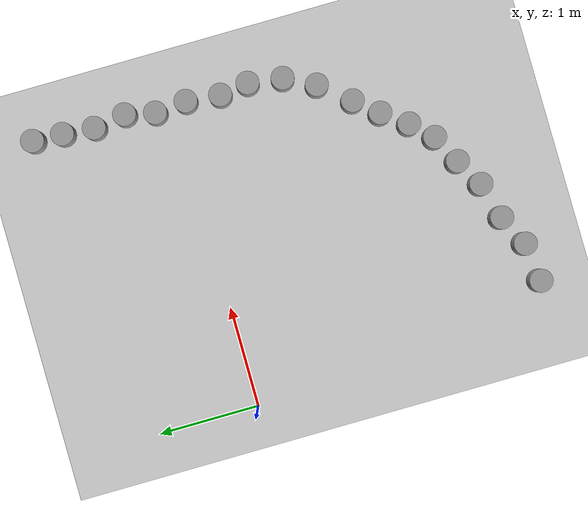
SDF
<sdf version="1.6">
 <world name="default">
  <model name="ground_plane">
   <static>1</static>
   <link name="link">
    <collision name="collision">
     <geometry><plane><normal>0 0 1</normal><size>100 100</size></plane></geometry>
     <surface>
      <contact><collide_bitmask>65535</collide_bitmask></contact>
      <friction><ode><mu>100</mu><mu2>50</mu2></ode></friction>
     </surface>
    </collision>
    <visual name="visual">
     <cast_shadows>0</cast_shadows>
     <geometry><plane><normal>0 0 1</normal><size>100 100</size></plane></geometry>
     <material>
      <script><uri>file://media/materials/scripts/gazebo.material</uri><name>Gazebo/Grey</name></script>
     </material>
    </visual>
   </link>
  </model>
  <model name="pillar_clone_25">
   <link name="link_0">
    <inertial>
     <mass>0.0172437</mass>
     <inertia>
      <ixx>0.000207925</ixx>
      <ixy>0</ixy>
      <ixz>0</ixz>
      <iyy>0.000207925</iyy>
      <iyz>0</iyz>
      <izz>0.000114861</izz>
     </inertia>
    </inertial>
    <pose>2e-06 -0 0 0 -0 0</pose>
    <visual name="visual">
     <geometry><cylinder><radius>0.115422</radius><length>0.32362</length></cylinder></geometry>
     <material>
      <lighting>1</lighting>
      <script><uri>file://media/materials/scripts/gazebo.material</uri><name>Gazebo/Grey</name></script>
      <shader type="vertex"><normal_map>__default__</normal_map></shader>
     </material>
    </visual>
    <collision name="collision">
     <geometry><cylinder><radius>0.115422</radius><length>0.32362</length></cylinder></geometry>
     <surface>
      <friction>
       <ode><mu>1</mu><mu2>1</mu2><fdir1>0 0 0</fdir1><slip1>0</slip1><slip2>0</slip2></ode>
       <torsional>
        <coefficient>1</coefficient>
        <patch_radius>0</patch_radius>
        <surface_radius>0</surface_radius>
        <use_patch_radius>1</use_patch_radius>
        <ode><slip>0</slip></ode>
       </torsional>
      </friction>
      <bounce><restitution_coefficient>0</restitution_coefficient><threshold>1e+06</threshold></bounce>
      <contact>
       <collide_without_contact>0</collide_without_contact>
       <collide_without_contact_bitmask>1</collide_without_contact_bitmask>
       <collide_bitmask>1</collide_bitmask>
       <ode>
        <soft_cfm>0</soft_cfm>
        <soft_erp>0.2</soft_erp>
        <kp>1e+13</kp>
        <kd>1</kd>
        <max_vel>0.01</max_vel>
        <min_depth>0</min_depth>
       </ode>
       <bullet>
        <split_impulse>1</split_impulse>
        <split_impulse_penetration_threshold>-0.01</split_impulse_penetration_threshold>
        <soft_cfm>0</soft_cfm>
        <soft_erp>0.2</soft_erp>
        <kp>1e+13</kp>
        <kd>1</kd>
       </bullet>
      </contact>
     </surface>
    </collision>
   </link>
   <static>1</static>
   <pose>3.08087 1.39534 0 0 -0 0</pose>
  </model>
  <model name="pillar_clone_26">
   <link name="link_0">
    <inertial>
     <mass>0.0172437</mass>
     <inertia>
      <ixx>0.000207925</ixx>
      <ixy>0</ixy>
      <ixz>0</ixz>
      <iyy>0.000207925</iyy>
      <iyz>0</iyz>
      <izz>0.000114861</izz>
     </inertia>
    </inertial>
    <pose>2e-06 -0 0 0 -0 0</pose>
    <visual name="visual">
     <geometry><cylinder><radius>0.115422</radius><length>0.32362</length></cylinder></geometry>
     <material>
      <lighting>1</lighting>
      <script><uri>file://media/materials/scripts/gazebo.material</uri><name>Gazebo/Grey</name></script>
      <shader type="vertex"><normal_map>__default__</normal_map></shader>
     </material>
    </visual>
    <collision name="collision">
     <geometry><cylinder><radius>0.115422</radius><length>0.32362</length></cylinder></geometry>
     <surface>
      <friction>
       <ode><mu>1</mu><mu2>1</mu2><fdir1>0 0 0</fdir1><slip1>0</slip1><slip2>0</slip2></ode>
       <torsional>
        <coefficient>1</coefficient>
        <patch_radius>0</patch_radius>
        <surface_radius>0</surface_radius>
        <use_patch_radius>1</use_patch_radius>
        <ode><slip>0</slip></ode>
       </torsional>
      </friction>
      <bounce><restitution_coefficient>0</restitution_coefficient><threshold>1e+06</threshold></bounce>
      <contact>
       <collide_without_contact>0</collide_without_contact>
       <collide_without_contact_bitmask>1</collide_without_contact_bitmask>
       <collide_bitmask>1</collide_bitmask>
       <ode>
        <soft_cfm>0</soft_cfm>
        <soft_erp>0.2</soft_erp>
        <kp>1e+13</kp>
        <kd>1</kd>
        <max_vel>0.01</max_vel>
        <min_depth>0</min_depth>
       </ode>
       <bullet>
        <split_impulse>1</split_impulse>
        <split_impulse_penetration_threshold>-0.01</split_impulse_penetration_threshold>
        <soft_cfm>0</soft_cfm>
        <soft_erp>0.2</soft_erp>
        <kp>1e+13</kp>
        <kd>1</kd>
       </bullet>
      </contact>
     </surface>
    </collision>
   </link>
   <static>1</static>
   <pose>3.0662 1.09873 0 0 -0 0</pose>
  </model>
  <model name="pillar_clone_27">
   <link name="link_0">
    <inertial>
     <mass>0.0172437</mass>
     <inertia>
      <ixx>0.000207925</ixx>
      <ixy>0</ixy>
      <ixz>0</ixz>
      <iyy>0.000207925</iyy>
      <iyz>0</iyz>
      <izz>0.000114861</izz>
     </inertia>
    </inertial>
    <pose>2e-06 -0 0 0 -0 0</pose>
    <visual name="visual">
     <geometry><cylinder><radius>0.115422</radius><length>0.32362</length></cylinder></geometry>
     <material>
      <lighting>1</lighting>
      <script><uri>file://media/materials/scripts/gazebo.material</uri><name>Gazebo/Grey</name></script>
      <shader type="vertex"><normal_map>__default__</normal_map></shader>
     </material>
    </visual>
    <collision name="collision">
     <geometry><cylinder><radius>0.115422</radius><length>0.32362</length></cylinder></geometry>
     <surface>
      <friction>
       <ode><mu>1</mu><mu2>1</mu2><fdir1>0 0 0</fdir1><slip1>0</slip1><slip2>0</slip2></ode>
       <torsional>
        <coefficient>1</coefficient>
        <patch_radius>0</patch_radius>
        <surface_radius>0</surface_radius>
        <use_patch_radius>1</use_patch_radius>
        <ode><slip>0</slip></ode>
       </torsional>
      </friction>
      <bounce><restitution_coefficient>0</restitution_coefficient><threshold>1e+06</threshold></bounce>
      <contact>
       <collide_without_contact>0</collide_without_contact>
       <collide_without_contact_bitmask>1</collide_without_contact_bitmask>
       <collide_bitmask>1</collide_bitmask>
       <ode>
        <soft_cfm>0</soft_cfm>
        <soft_erp>0.2</soft_erp>
        <kp>1e+13</kp>
        <kd>1</kd>
        <max_vel>0.01</max_vel>
        <min_depth>0</min_depth>
       </ode>
       <bullet>
        <split_impulse>1</split_impulse>
        <split_impulse_penetration_threshold>-0.01</split_impulse_penetration_threshold>
        <soft_cfm>0</soft_cfm>
        <soft_erp>0.2</soft_erp>
        <kp>1e+13</kp>
        <kd>1</kd>
       </bullet>
      </contact>
     </surface>
    </collision>
   </link>
   <static>1</static>
   <pose>3.03882 0.786964 0 0 -0 0</pose>
  </model>
  <model name="pillar_clone_28">
   <link name="link_0">
    <inertial>
     <mass>0.0172437</mass>
     <inertia>
      <ixx>0.000207925</ixx>
      <ixy>0</ixy>
      <ixz>0</ixz>
      <iyy>0.000207925</iyy>
      <iyz>0</iyz>
      <izz>0.000114861</izz>
     </inertia>
    </inertial>
    <pose>2e-06 -0 0 0 -0 0</pose>
    <visual name="visual">
     <geometry><cylinder><radius>0.115422</radius><length>0.32362</length></cylinder></geometry>
     <material>
      <lighting>1</lighting>
      <script><uri>file://media/materials/scripts/gazebo.material</uri><name>Gazebo/Grey</name></script>
      <shader type="vertex"><normal_map>__default__</normal_map></shader>
     </material>
    </visual>
    <collision name="collision">
     <geometry><cylinder><radius>0.115422</radius><length>0.32362</length></cylinder></geometry>
     <surface>
      <friction>
       <ode><mu>1</mu><mu2>1</mu2><fdir1>0 0 0</fdir1><slip1>0</slip1><slip2>0</slip2></ode>
       <torsional>
        <coefficient>1</coefficient>
        <patch_radius>0</patch_radius>
        <surface_radius>0</surface_radius>
        <use_patch_radius>1</use_patch_radius>
        <ode><slip>0</slip></ode>
       </torsional>
      </friction>
      <bounce><restitution_coefficient>0</restitution_coefficient><threshold>1e+06</threshold></bounce>
      <contact>
       <collide_without_contact>0</collide_without_contact>
       <collide_without_contact_bitmask>1</collide_without_contact_bitmask>
       <collide_bitmask>1</collide_bitmask>
       <ode>
        <soft_cfm>0</soft_cfm>
        <soft_erp>0.2</soft_erp>
        <kp>1e+13</kp>
        <kd>1</kd>
        <max_vel>0.01</max_vel>
        <min_depth>0</min_depth>
       </ode>
       <bullet>
        <split_impulse>1</split_impulse>
        <split_impulse_penetration_threshold>-0.01</split_impulse_penetration_threshold>
        <soft_cfm>0</soft_cfm>
        <soft_erp>0.2</soft_erp>
        <kp>1e+13</kp>
        <kd>1</kd>
       </bullet>
      </contact>
     </surface>
    </collision>
   </link>
   <static>1</static>
   <pose>3.08397 0.469575 0 0 -0 0</pose>
  </model>
  <model name="pillar_clone_29">
   <link name="link_0">
    <inertial>
     <mass>0.0172437</mass>
     <inertia>
      <ixx>0.000207925</ixx>
      <ixy>0</ixy>
      <ixz>0</ixz>
      <iyy>0.000207925</iyy>
      <iyz>0</iyz>
      <izz>0.000114861</izz>
     </inertia>
    </inertial>
    <pose>2e-06 -0 0 0 -0 0</pose>
    <visual name="visual">
     <geometry><cylinder><radius>0.115422</radius><length>0.32362</length></cylinder></geometry>
     <material>
      <lighting>1</lighting>
      <script><uri>file://media/materials/scripts/gazebo.material</uri><name>Gazebo/Grey</name></script>
      <shader type="vertex"><normal_map>__default__</normal_map></shader>
     </material>
    </visual>
    <collision name="collision">
     <geometry><cylinder><radius>0.115422</radius><length>0.32362</length></cylinder></geometry>
     <surface>
      <friction>
       <ode><mu>1</mu><mu2>1</mu2><fdir1>0 0 0</fdir1><slip1>0</slip1><slip2>0</slip2></ode>
       <torsional>
        <coefficient>1</coefficient>
        <patch_radius>0</patch_radius>
        <surface_radius>0</surface_radius>
        <use_patch_radius>1</use_patch_radius>
        <ode><slip>0</slip></ode>
       </torsional>
      </friction>
      <bounce><restitution_coefficient>0</restitution_coefficient><threshold>1e+06</threshold></bounce>
      <contact>
       <collide_without_contact>0</collide_without_contact>
       <collide_without_contact_bitmask>1</collide_without_contact_bitmask>
       <collide_bitmask>1</collide_bitmask>
       <ode>
        <soft_cfm>0</soft_cfm>
        <soft_erp>0.2</soft_erp>
        <kp>1e+13</kp>
        <kd>1</kd>
        <max_vel>0.01</max_vel>
        <min_depth>0</min_depth>
       </ode>
       <bullet>
        <split_impulse>1</split_impulse>
        <split_impulse_penetration_threshold>-0.01</split_impulse_penetration_threshold>
        <soft_cfm>0</soft_cfm>
        <soft_erp>0.2</soft_erp>
        <kp>1e+13</kp>
        <kd>1</kd>
       </bullet>
      </contact>
     </surface>
    </collision>
   </link>
   <static>1</static>
   <pose>3.0183 0.177162 0 0 -0 0</pose>
  </model>
  <model name="pillar_clone_30">
   <link name="link_0">
    <inertial>
     <mass>0.0172437</mass>
     <inertia>
      <ixx>0.000207925</ixx>
      <ixy>0</ixy>
      <ixz>0</ixz>
      <iyy>0.000207925</iyy>
      <iyz>0</iyz>
      <izz>0.000114861</izz>
     </inertia>
    </inertial>
    <pose>2e-06 -0 0 0 -0 0</pose>
    <visual name="visual">
     <geometry><cylinder><radius>0.115422</radius><length>0.32362</length></cylinder></geometry>
     <material>
      <lighting>1</lighting>
      <script><uri>file://media/materials/scripts/gazebo.material</uri><name>Gazebo/Grey</name></script>
      <shader type="vertex"><normal_map>__default__</normal_map></shader>
     </material>
    </visual>
    <collision name="collision">
     <geometry><cylinder><radius>0.115422</radius><length>0.32362</length></cylinder></geometry>
     <surface>
      <friction>
       <ode><mu>1</mu><mu2>1</mu2><fdir1>0 0 0</fdir1><slip1>0</slip1><slip2>0</slip2></ode>
       <torsional>
        <coefficient>1</coefficient>
        <patch_radius>0</patch_radius>
        <surface_radius>0</surface_radius>
        <use_patch_radius>1</use_patch_radius>
        <ode><slip>0</slip></ode>
       </torsional>
      </friction>
      <bounce><restitution_coefficient>0</restitution_coefficient><threshold>1e+06</threshold></bounce>
      <contact>
       <collide_without_contact>0</collide_without_contact>
       <collide_without_contact_bitmask>1</collide_without_contact_bitmask>
       <collide_bitmask>1</collide_bitmask>
       <ode>
        <soft_cfm>0</soft_cfm>
        <soft_erp>0.2</soft_erp>
        <kp>1e+13</kp>
        <kd>1</kd>
        <max_vel>0.01</max_vel>
        <min_depth>0</min_depth>
       </ode>
       <bullet>
        <split_impulse>1</split_impulse>
        <split_impulse_penetration_threshold>-0.01</split_impulse_penetration_threshold>
        <soft_cfm>0</soft_cfm>
        <soft_erp>0.2</soft_erp>
        <kp>1e+13</kp>
        <kd>1</kd>
       </bullet>
      </contact>
     </surface>
    </collision>
   </link>
   <static>1</static>
   <pose>3.04633 -0.136981 0 0 -0 0</pose>
  </model>
  <model name="pillar_clone_31">
   <link name="link_0">
    <inertial>
     <mass>0.0172437</mass>
     <inertia>
      <ixx>0.000207925</ixx>
      <ixy>0</ixy>
      <ixz>0</ixz>
      <iyy>0.000207925</iyy>
      <iyz>0</iyz>
      <izz>0.000114861</izz>
     </inertia>
    </inertial>
    <pose>2e-06 -0 0 0 -0 0</pose>
    <visual name="visual">
     <geometry><cylinder><radius>0.115422</radius><length>0.32362</length></cylinder></geometry>
     <material>
      <lighting>1</lighting>
      <script><uri>file://media/materials/scripts/gazebo.material</uri><name>Gazebo/Grey</name></script>
      <shader type="vertex"><normal_map>__default__</normal_map></shader>
     </material>
    </visual>
    <collision name="collision">
     <geometry><cylinder><radius>0.115422</radius><length>0.32362</length></cylinder></geometry>
     <surface>
      <friction>
       <ode><mu>1</mu><mu2>1</mu2><fdir1>0 0 0</fdir1><slip1>0</slip1><slip2>0</slip2></ode>
       <torsional>
        <coefficient>1</coefficient>
        <patch_radius>0</patch_radius>
        <surface_radius>0</surface_radius>
        <use_patch_radius>1</use_patch_radius>
        <ode><slip>0</slip></ode>
       </torsional>
      </friction>
      <bounce><restitution_coefficient>0</restitution_coefficient><threshold>1e+06</threshold></bounce>
      <contact>
       <collide_without_contact>0</collide_without_contact>
       <collide_without_contact_bitmask>1</collide_without_contact_bitmask>
       <collide_bitmask>1</collide_bitmask>
       <ode>
        <soft_cfm>0</soft_cfm>
        <soft_erp>0.2</soft_erp>
        <kp>1e+13</kp>
        <kd>1</kd>
        <max_vel>0.01</max_vel>
        <min_depth>0</min_depth>
       </ode>
       <bullet>
        <split_impulse>1</split_impulse>
        <split_impulse_penetration_threshold>-0.01</split_impulse_penetration_threshold>
        <soft_cfm>0</soft_cfm>
        <soft_erp>0.2</soft_erp>
        <kp>1e+13</kp>
        <kd>1</kd>
       </bullet>
      </contact>
     </surface>
    </collision>
   </link>
   <static>1</static>
   <pose>3.01254 -0.476016 0 0 -0 0</pose>
  </model>
  <model name="pillar_clone_32">
   <link name="link_0">
    <inertial>
     <mass>0.0172437</mass>
     <inertia>
      <ixx>0.000207925</ixx>
      <ixy>0</ixy>
      <ixz>0</ixz>
      <iyy>0.000207925</iyy>
      <iyz>0</iyz>
      <izz>0.000114861</izz>
     </inertia>
    </inertial>
    <pose>2e-06 -0 0 0 -0 0</pose>
    <visual name="visual">
     <geometry><cylinder><radius>0.115422</radius><length>0.32362</length></cylinder></geometry>
     <material>
      <lighting>1</lighting>
      <script><uri>file://media/materials/scripts/gazebo.material</uri><name>Gazebo/Grey</name></script>
      <shader type="vertex"><normal_map>__default__</normal_map></shader>
     </material>
    </visual>
    <collision name="collision">
     <geometry><cylinder><radius>0.115422</radius><length>0.32362</length></cylinder></geometry>
     <surface>
      <friction>
       <ode><mu>1</mu><mu2>1</mu2><fdir1>0 0 0</fdir1><slip1>0</slip1><slip2>0</slip2></ode>
       <torsional>
        <coefficient>1</coefficient>
        <patch_radius>0</patch_radius>
        <surface_radius>0</surface_radius>
        <use_patch_radius>1</use_patch_radius>
        <ode><slip>0</slip></ode>
       </torsional>
      </friction>
      <bounce><restitution_coefficient>0</restitution_coefficient><threshold>1e+06</threshold></bounce>
      <contact>
       <collide_without_contact>0</collide_without_contact>
       <collide_without_contact_bitmask>1</collide_without_contact_bitmask>
       <collide_bitmask>1</collide_bitmask>
       <ode>
        <soft_cfm>0</soft_cfm>
        <soft_erp>0.2</soft_erp>
        <kp>1e+13</kp>
        <kd>1</kd>
        <max_vel>0.01</max_vel>
        <min_depth>0</min_depth>
       </ode>
       <bullet>
        <split_impulse>1</split_impulse>
        <split_impulse_penetration_threshold>-0.01</split_impulse_penetration_threshold>
        <soft_cfm>0</soft_cfm>
        <soft_erp>0.2</soft_erp>
        <kp>1e+13</kp>
        <kd>1</kd>
       </bullet>
      </contact>
     </surface>
    </collision>
   </link>
   <static>1</static>
   <pose>3.05111 -0.761142 0 0 -0 0</pose>
  </model>
  <model name="pillar_clone_33">
   <link name="link_0">
    <inertial>
     <mass>0.0172437</mass>
     <inertia>
      <ixx>0.000207925</ixx>
      <ixy>0</ixy>
      <ixz>0</ixz>
      <iyy>0.000207925</iyy>
      <iyz>0</iyz>
      <izz>0.000114861</izz>
     </inertia>
    </inertial>
    <pose>2e-06 -0 0 0 -0 0</pose>
    <visual name="visual">
     <geometry><cylinder><radius>0.115422</radius><length>0.32362</length></cylinder></geometry>
     <material>
      <lighting>1</lighting>
      <script><uri>file://media/materials/scripts/gazebo.material</uri><name>Gazebo/Grey</name></script>
      <shader type="vertex"><normal_map>__default__</normal_map></shader>
     </material>
    </visual>
    <collision name="collision">
     <geometry><cylinder><radius>0.115422</radius><length>0.32362</length></cylinder></geometry>
     <surface>
      <friction>
       <ode><mu>1</mu><mu2>1</mu2><fdir1>0 0 0</fdir1><slip1>0</slip1><slip2>0</slip2></ode>
       <torsional>
        <coefficient>1</coefficient>
        <patch_radius>0</patch_radius>
        <surface_radius>0</surface_radius>
        <use_patch_radius>1</use_patch_radius>
        <ode><slip>0</slip></ode>
       </torsional>
      </friction>
      <bounce><restitution_coefficient>0</restitution_coefficient><threshold>1e+06</threshold></bounce>
      <contact>
       <collide_without_contact>0</collide_without_contact>
       <collide_without_contact_bitmask>1</collide_without_contact_bitmask>
       <collide_bitmask>1</collide_bitmask>
       <ode>
        <soft_cfm>0</soft_cfm>
        <soft_erp>0.2</soft_erp>
        <kp>1e+13</kp>
        <kd>1</kd>
        <max_vel>0.01</max_vel>
        <min_depth>0</min_depth>
       </ode>
       <bullet>
        <split_impulse>1</split_impulse>
        <split_impulse_penetration_threshold>-0.01</split_impulse_penetration_threshold>
        <soft_cfm>0</soft_cfm>
        <soft_erp>0.2</soft_erp>
        <kp>1e+13</kp>
        <kd>1</kd>
       </bullet>
      </contact>
     </surface>
    </collision>
   </link>
   <static>1</static>
   <pose>3.0028 -1.10097 0 0 -0 0</pose>
  </model>
  <model name="pillar_clone_34">
   <link name="link_0">
    <inertial>
     <mass>0.0172437</mass>
     <inertia>
      <ixx>0.000207925</ixx>
      <ixy>0</ixy>
      <ixz>0</ixz>
      <iyy>0.000207925</iyy>
      <iyz>0</iyz>
      <izz>0.000114861</izz>
     </inertia>
    </inertial>
    <pose>2e-06 -0 0 0 -0 0</pose>
    <visual name="visual">
     <geometry><cylinder><radius>0.115422</radius><length>0.32362</length></cylinder></geometry>
     <material>
      <lighting>1</lighting>
      <script><uri>file://media/materials/scripts/gazebo.material</uri><name>Gazebo/Grey</name></script>
      <shader type="vertex"><normal_map>__default__</normal_map></shader>
     </material>
    </visual>
    <collision name="collision">
     <geometry><cylinder><radius>0.115422</radius><length>0.32362</length></cylinder></geometry>
     <surface>
      <friction>
       <ode><mu>1</mu><mu2>1</mu2><fdir1>0 0 0</fdir1><slip1>0</slip1><slip2>0</slip2></ode>
       <torsional>
        <coefficient>1</coefficient>
        <patch_radius>0</patch_radius>
        <surface_radius>0</surface_radius>
        <use_patch_radius>1</use_patch_radius>
        <ode><slip>0</slip></ode>
       </torsional>
      </friction>
      <bounce><restitution_coefficient>0</restitution_coefficient><threshold>1e+06</threshold></bounce>
      <contact>
       <collide_without_contact>0</collide_without_contact>
       <collide_without_contact_bitmask>1</collide_without_contact_bitmask>
       <collide_bitmask>1</collide_bitmask>
       <ode>
        <soft_cfm>0</soft_cfm>
        <soft_erp>0.2</soft_erp>
        <kp>1e+13</kp>
        <kd>1</kd>
        <max_vel>0.01</max_vel>
        <min_depth>0</min_depth>
       </ode>
       <bullet>
        <split_impulse>1</split_impulse>
        <split_impulse_penetration_threshold>-0.01</split_impulse_penetration_threshold>
        <soft_cfm>0</soft_cfm>
        <soft_erp>0.2</soft_erp>
        <kp>1e+13</kp>
        <kd>1</kd>
       </bullet>
      </contact>
     </surface>
    </collision>
   </link>
   <static>1</static>
   <pose>1.12129 -2.77078 0 0 -0 0</pose>
  </model>
  <model name="pillar_clone_35">
   <link name="link_0">
    <inertial>
     <mass>0.0172437</mass>
     <inertia>
      <ixx>0.000207925</ixx>
      <ixy>0</ixy>
      <ixz>0</ixz>
      <iyy>0.000207925</iyy>
      <iyz>0</iyz>
      <izz>0.000114861</izz>
     </inertia>
    </inertial>
    <pose>2e-06 -0 0 0 -0 0</pose>
    <visual name="visual">
     <geometry><cylinder><radius>0.115422</radius><length>0.32362</length></cylinder></geometry>
     <material>
      <lighting>1</lighting>
      <script><uri>file://media/materials/scripts/gazebo.material</uri><name>Gazebo/Grey</name></script>
      <shader type="vertex"><normal_map>__default__</normal_map></shader>
     </material>
    </visual>
    <collision name="collision">
     <geometry><cylinder><radius>0.115422</radius><length>0.32362</length></cylinder></geometry>
     <surface>
      <friction>
       <ode><mu>1</mu><mu2>1</mu2><fdir1>0 0 0</fdir1><slip1>0</slip1><slip2>0</slip2></ode>
       <torsional>
        <coefficient>1</coefficient>
        <patch_radius>0</patch_radius>
        <surface_radius>0</surface_radius>
        <use_patch_radius>1</use_patch_radius>
        <ode><slip>0</slip></ode>
       </torsional>
      </friction>
      <bounce><restitution_coefficient>0</restitution_coefficient><threshold>1e+06</threshold></bounce>
      <contact>
       <collide_without_contact>0</collide_without_contact>
       <collide_without_contact_bitmask>1</collide_without_contact_bitmask>
       <collide_bitmask>1</collide_bitmask>
       <ode>
        <soft_cfm>0</soft_cfm>
        <soft_erp>0.2</soft_erp>
        <kp>1e+13</kp>
        <kd>1</kd>
        <max_vel>0.01</max_vel>
        <min_depth>0</min_depth>
       </ode>
       <bullet>
        <split_impulse>1</split_impulse>
        <split_impulse_penetration_threshold>-0.01</split_impulse_penetration_threshold>
        <soft_cfm>0</soft_cfm>
        <soft_erp>0.2</soft_erp>
        <kp>1e+13</kp>
        <kd>1</kd>
       </bullet>
      </contact>
     </surface>
    </collision>
   </link>
   <static>1</static>
   <pose>1.48879 -2.66743 0 0 -0 0</pose>
  </model>
  <model name="pillar_clone_36">
   <link name="link_0">
    <inertial>
     <mass>0.0172437</mass>
     <inertia>
      <ixx>0.000207925</ixx>
      <ixy>0</ixy>
      <ixz>0</ixz>
      <iyy>0.000207925</iyy>
      <iyz>0</iyz>
      <izz>0.000114861</izz>
     </inertia>
    </inertial>
    <pose>2e-06 -0 0 0 -0 0</pose>
    <visual name="visual">
     <geometry><cylinder><radius>0.115422</radius><length>0.32362</length></cylinder></geometry>
     <material>
      <lighting>1</lighting>
      <script><uri>file://media/materials/scripts/gazebo.material</uri><name>Gazebo/Grey</name></script>
      <shader type="vertex"><normal_map>__default__</normal_map></shader>
     </material>
    </visual>
    <collision name="collision">
     <geometry><cylinder><radius>0.115422</radius><length>0.32362</length></cylinder></geometry>
     <surface>
      <friction>
       <ode><mu>1</mu><mu2>1</mu2><fdir1>0 0 0</fdir1><slip1>0</slip1><slip2>0</slip2></ode>
       <torsional>
        <coefficient>1</coefficient>
        <patch_radius>0</patch_radius>
        <surface_radius>0</surface_radius>
        <use_patch_radius>1</use_patch_radius>
        <ode><slip>0</slip></ode>
       </torsional>
      </friction>
      <bounce><restitution_coefficient>0</restitution_coefficient><threshold>1e+06</threshold></bounce>
      <contact>
       <collide_without_contact>0</collide_without_contact>
       <collide_without_contact_bitmask>1</collide_without_contact_bitmask>
       <collide_bitmask>1</collide_bitmask>
       <ode>
        <soft_cfm>0</soft_cfm>
        <soft_erp>0.2</soft_erp>
        <kp>1e+13</kp>
        <kd>1</kd>
        <max_vel>0.01</max_vel>
        <min_depth>0</min_depth>
       </ode>
       <bullet>
        <split_impulse>1</split_impulse>
        <split_impulse_penetration_threshold>-0.01</split_impulse_penetration_threshold>
        <soft_cfm>0</soft_cfm>
        <soft_erp>0.2</soft_erp>
        <kp>1e+13</kp>
        <kd>1</kd>
       </bullet>
      </contact>
     </surface>
    </collision>
   </link>
   <static>1</static>
   <pose>1.76382 -2.50996 0 0 -0 0</pose>
  </model>
  <model name="pillar_clone_37">
   <link name="link_0">
    <inertial>
     <mass>0.0172437</mass>
     <inertia>
      <ixx>0.000207925</ixx>
      <ixy>0</ixy>
      <ixz>0</ixz>
      <iyy>0.000207925</iyy>
      <iyz>0</iyz>
      <izz>0.000114861</izz>
     </inertia>
    </inertial>
    <pose>2e-06 -0 0 0 -0 0</pose>
    <visual name="visual">
     <geometry><cylinder><radius>0.115422</radius><length>0.32362</length></cylinder></geometry>
     <material>
      <lighting>1</lighting>
      <script><uri>file://media/materials/scripts/gazebo.material</uri><name>Gazebo/Grey</name></script>
      <shader type="vertex"><normal_map>__default__</normal_map></shader>
     </material>
    </visual>
    <collision name="collision">
     <geometry><cylinder><radius>0.115422</radius><length>0.32362</length></cylinder></geometry>
     <surface>
      <friction>
       <ode><mu>1</mu><mu2>1</mu2><fdir1>0 0 0</fdir1><slip1>0</slip1><slip2>0</slip2></ode>
       <torsional>
        <coefficient>1</coefficient>
        <patch_radius>0</patch_radius>
        <surface_radius>0</surface_radius>
        <use_patch_radius>1</use_patch_radius>
        <ode><slip>0</slip></ode>
       </torsional>
      </friction>
      <bounce><restitution_coefficient>0</restitution_coefficient><threshold>1e+06</threshold></bounce>
      <contact>
       <collide_without_contact>0</collide_without_contact>
       <collide_without_contact_bitmask>1</collide_without_contact_bitmask>
       <collide_bitmask>1</collide_bitmask>
       <ode>
        <soft_cfm>0</soft_cfm>
        <soft_erp>0.2</soft_erp>
        <kp>1e+13</kp>
        <kd>1</kd>
        <max_vel>0.01</max_vel>
        <min_depth>0</min_depth>
       </ode>
       <bullet>
        <split_impulse>1</split_impulse>
        <split_impulse_penetration_threshold>-0.01</split_impulse_penetration_threshold>
        <soft_cfm>0</soft_cfm>
        <soft_erp>0.2</soft_erp>
        <kp>1e+13</kp>
        <kd>1</kd>
       </bullet>
      </contact>
     </surface>
    </collision>
   </link>
   <static>1</static>
   <pose>0.815934 -2.92062 0 0 -0 0</pose>
  </model>
  <model name="pillar_clone_38">
   <link name="link_0">
    <inertial>
     <mass>0.0172437</mass>
     <inertia>
      <ixx>0.000207925</ixx>
      <ixy>0</ixy>
      <ixz>0</ixz>
      <iyy>0.000207925</iyy>
      <iyz>0</iyz>
      <izz>0.000114861</izz>
     </inertia>
    </inertial>
    <pose>2e-06 -0 0 0 -0 0</pose>
    <visual name="visual">
     <geometry><cylinder><radius>0.115422</radius><length>0.32362</length></cylinder></geometry>
     <material>
      <lighting>1</lighting>
      <script><uri>file://media/materials/scripts/gazebo.material</uri><name>Gazebo/Grey</name></script>
      <shader type="vertex"><normal_map>__default__</normal_map></shader>
     </material>
    </visual>
    <collision name="collision">
     <geometry><cylinder><radius>0.115422</radius><length>0.32362</length></cylinder></geometry>
     <surface>
      <friction>
       <ode><mu>1</mu><mu2>1</mu2><fdir1>0 0 0</fdir1><slip1>0</slip1><slip2>0</slip2></ode>
       <torsional>
        <coefficient>1</coefficient>
        <patch_radius>0</patch_radius>
        <surface_radius>0</surface_radius>
        <use_patch_radius>1</use_patch_radius>
        <ode><slip>0</slip></ode>
       </torsional>
      </friction>
      <bounce><restitution_coefficient>0</restitution_coefficient><threshold>1e+06</threshold></bounce>
      <contact>
       <collide_without_contact>0</collide_without_contact>
       <collide_without_contact_bitmask>1</collide_without_contact_bitmask>
       <collide_bitmask>1</collide_bitmask>
       <ode>
        <soft_cfm>0</soft_cfm>
        <soft_erp>0.2</soft_erp>
        <kp>1e+13</kp>
        <kd>1</kd>
        <max_vel>0.01</max_vel>
        <min_depth>0</min_depth>
       </ode>
       <bullet>
        <split_impulse>1</split_impulse>
        <split_impulse_penetration_threshold>-0.01</split_impulse_penetration_threshold>
        <soft_cfm>0</soft_cfm>
        <soft_erp>0.2</soft_erp>
        <kp>1e+13</kp>
        <kd>1</kd>
       </bullet>
      </contact>
     </surface>
    </collision>
   </link>
   <static>1</static>
   <pose>0.429906 -2.9671 0 0 -0 0</pose>
  </model>
  <model name="pillar_clone_36_clone">
   <link name="link_0">
    <inertial>
     <mass>0.0172437</mass>
     <inertia>
      <ixx>0.000207925</ixx>
      <ixy>0</ixy>
      <ixz>0</ixz>
      <iyy>0.000207925</iyy>
      <iyz>0</iyz>
      <izz>0.000114861</izz>
     </inertia>
    </inertial>
    <pose>2e-06 -0 0 0 -0 0</pose>
    <visual name="visual">
     <geometry><cylinder><radius>0.115422</radius><length>0.32362</length></cylinder></geometry>
     <material>
      <lighting>1</lighting>
      <script><uri>file://media/materials/scripts/gazebo.material</uri><name>Gazebo/Grey</name></script>
      <shader type="vertex"><normal_map>__default__</normal_map></shader>
     </material>
    </visual>
    <collision name="collision">
     <geometry><cylinder><radius>0.115422</radius><length>0.32362</length></cylinder></geometry>
     <surface>
      <friction>
       <ode><mu>1</mu><mu2>1</mu2><fdir1>0 0 0</fdir1><slip1>0</slip1><slip2>0</slip2></ode>
       <torsional>
        <coefficient>1</coefficient>
        <patch_radius>0</patch_radius>
        <surface_radius>0</surface_radius>
        <use_patch_radius>1</use_patch_radius>
        <ode><slip>0</slip></ode>
       </torsional>
      </friction>
      <bounce><restitution_coefficient>0</restitution_coefficient><threshold>1e+06</threshold></bounce>
      <contact>
       <collide_without_contact>0</collide_without_contact>
       <collide_without_contact_bitmask>1</collide_without_contact_bitmask>
       <collide_bitmask>1</collide_bitmask>
       <ode>
        <soft_cfm>0</soft_cfm>
        <soft_erp>0.2</soft_erp>
        <kp>1e+13</kp>
        <kd>1</kd>
        <max_vel>0.01</max_vel>
        <min_depth>0</min_depth>
       </ode>
       <bullet>
        <split_impulse>1</split_impulse>
        <split_impulse_penetration_threshold>-0.01</split_impulse_penetration_threshold>
        <soft_cfm>0</soft_cfm>
        <soft_erp>0.2</soft_erp>
        <kp>1e+13</kp>
        <kd>1</kd>
       </bullet>
      </contact>
     </surface>
    </collision>
   </link>
   <static>1</static>
   <pose>2.85015 -1.40169 0 0 -0 0</pose>
  </model>
  <model name="pillar_clone_36_clone_0">
   <link name="link_0">
    <inertial>
     <mass>0.0172437</mass>
     <inertia>
      <ixx>0.000207925</ixx>
      <ixy>0</ixy>
      <ixz>0</ixz>
      <iyy>0.000207925</iyy>
      <iyz>0</iyz>
      <izz>0.000114861</izz>
     </inertia>
    </inertial>
    <pose>2e-06 -0 0 0 -0 0</pose>
    <visual name="visual">
     <geometry><cylinder><radius>0.115422</radius><length>0.32362</length></cylinder></geometry>
     <material>
      <lighting>1</lighting>
      <script><uri>file://media/materials/scripts/gazebo.material</uri><name>Gazebo/Grey</name></script>
      <shader type="vertex"><normal_map>__default__</normal_map></shader>
     </material>
    </visual>
    <collision name="collision">
     <geometry><cylinder><radius>0.115422</radius><length>0.32362</length></cylinder></geometry>
     <surface>
      <friction>
       <ode><mu>1</mu><mu2>1</mu2><fdir1>0 0 0</fdir1><slip1>0</slip1><slip2>0</slip2></ode>
       <torsional>
        <coefficient>1</coefficient>
        <patch_radius>0</patch_radius>
        <surface_radius>0</surface_radius>
        <use_patch_radius>1</use_patch_radius>
        <ode><slip>0</slip></ode>
       </torsional>
      </friction>
      <bounce><restitution_coefficient>0</restitution_coefficient><threshold>1e+06</threshold></bounce>
      <contact>
       <collide_without_contact>0</collide_without_contact>
       <collide_without_contact_bitmask>1</collide_without_contact_bitmask>
       <collide_bitmask>1</collide_bitmask>
       <ode>
        <soft_cfm>0</soft_cfm>
        <soft_erp>0.2</soft_erp>
        <kp>1e+13</kp>
        <kd>1</kd>
        <max_vel>0.01</max_vel>
        <min_depth>0</min_depth>
       </ode>
       <bullet>
        <split_impulse>1</split_impulse>
        <split_impulse_penetration_threshold>-0.01</split_impulse_penetration_threshold>
        <soft_cfm>0</soft_cfm>
        <soft_erp>0.2</soft_erp>
        <kp>1e+13</kp>
        <kd>1</kd>
       </bullet>
      </contact>
     </surface>
    </collision>
   </link>
   <static>1</static>
   <pose>2.6073 -1.69408 0 0 -0 0</pose>
  </model>
  <model name="pillar_clone_36_clone_1">
   <link name="link_0">
    <inertial>
     <mass>0.0172437</mass>
     <inertia>
      <ixx>0.000207925</ixx>
      <ixy>0</ixy>
      <ixz>0</ixz>
      <iyy>0.000207925</iyy>
      <iyz>0</iyz>
      <izz>0.000114861</izz>
     </inertia>
    </inertial>
    <pose>2e-06 -0 0 0 -0 0</pose>
    <visual name="visual">
     <geometry><cylinder><radius>0.115422</radius><length>0.32362</length></cylinder></geometry>
     <material>
      <lighting>1</lighting>
      <script><uri>file://media/materials/scripts/gazebo.material</uri><name>Gazebo/Grey</name></script>
      <shader type="vertex"><normal_map>__default__</normal_map></shader>
     </material>
    </visual>
    <collision name="collision">
     <geometry><cylinder><radius>0.115422</radius><length>0.32362</length></cylinder></geometry>
     <surface>
      <friction>
       <ode><mu>1</mu><mu2>1</mu2><fdir1>0 0 0</fdir1><slip1>0</slip1><slip2>0</slip2></ode>
       <torsional>
        <coefficient>1</coefficient>
        <patch_radius>0</patch_radius>
        <surface_radius>0</surface_radius>
        <use_patch_radius>1</use_patch_radius>
        <ode><slip>0</slip></ode>
       </torsional>
      </friction>
      <bounce><restitution_coefficient>0</restitution_coefficient><threshold>1e+06</threshold></bounce>
      <contact>
       <collide_without_contact>0</collide_without_contact>
       <collide_without_contact_bitmask>1</collide_without_contact_bitmask>
       <collide_bitmask>1</collide_bitmask>
       <ode>
        <soft_cfm>0</soft_cfm>
        <soft_erp>0.2</soft_erp>
        <kp>1e+13</kp>
        <kd>1</kd>
        <max_vel>0.01</max_vel>
        <min_depth>0</min_depth>
       </ode>
       <bullet>
        <split_impulse>1</split_impulse>
        <split_impulse_penetration_threshold>-0.01</split_impulse_penetration_threshold>
        <soft_cfm>0</soft_cfm>
        <soft_erp>0.2</soft_erp>
        <kp>1e+13</kp>
        <kd>1</kd>
       </bullet>
      </contact>
     </surface>
    </collision>
   </link>
   <static>1</static>
   <pose>2.41905 -1.9188 0 0 -0 0</pose>
  </model>
  <model name="pillar_clone_36_clone_2">
   <link name="link_0">
    <inertial>
     <mass>0.0172437</mass>
     <inertia>
      <ixx>0.000207925</ixx>
      <ixy>0</ixy>
      <ixz>0</ixz>
      <iyy>0.000207925</iyy>
      <iyz>0</iyz>
      <izz>0.000114861</izz>
     </inertia>
    </inertial>
    <pose>2e-06 -0 0 0 -0 0</pose>
    <visual name="visual">
     <geometry><cylinder><radius>0.115422</radius><length>0.32362</length></cylinder></geometry>
     <material>
      <lighting>1</lighting>
      <script><uri>file://media/materials/scripts/gazebo.material</uri><name>Gazebo/Grey</name></script>
      <shader type="vertex"><normal_map>__default__</normal_map></shader>
     </material>
    </visual>
    <collision name="collision">
     <geometry><cylinder><radius>0.115422</radius><length>0.32362</length></cylinder></geometry>
     <surface>
      <friction>
       <ode><mu>1</mu><mu2>1</mu2><fdir1>0 0 0</fdir1><slip1>0</slip1><slip2>0</slip2></ode>
       <torsional>
        <coefficient>1</coefficient>
        <patch_radius>0</patch_radius>
        <surface_radius>0</surface_radius>
        <use_patch_radius>1</use_patch_radius>
        <ode><slip>0</slip></ode>
       </torsional>
      </friction>
      <bounce><restitution_coefficient>0</restitution_coefficient><threshold>1e+06</threshold></bounce>
      <contact>
       <collide_without_contact>0</collide_without_contact>
       <collide_without_contact_bitmask>1</collide_without_contact_bitmask>
       <collide_bitmask>1</collide_bitmask>
       <ode>
        <soft_cfm>0</soft_cfm>
        <soft_erp>0.2</soft_erp>
        <kp>1e+13</kp>
        <kd>1</kd>
        <max_vel>0.01</max_vel>
        <min_depth>0</min_depth>
       </ode>
       <bullet>
        <split_impulse>1</split_impulse>
        <split_impulse_penetration_threshold>-0.01</split_impulse_penetration_threshold>
        <soft_cfm>0</soft_cfm>
        <soft_erp>0.2</soft_erp>
        <kp>1e+13</kp>
        <kd>1</kd>
       </bullet>
      </contact>
     </surface>
    </collision>
   </link>
   <static>1</static>
   <pose>2.24195 -2.1591 0 0 -0 0</pose>
  </model>
  <model name="pillar_clone_36_clone_3">
   <link name="link_0">
    <inertial>
     <mass>0.0172437</mass>
     <inertia>
      <ixx>0.000207925</ixx>
      <ixy>0</ixy>
      <ixz>0</ixz>
      <iyy>0.000207925</iyy>
      <iyz>0</iyz>
      <izz>0.000114861</izz>
     </inertia>
    </inertial>
    <pose>2e-06 -0 0 0 -0 0</pose>
    <visual name="visual">
     <geometry><cylinder><radius>0.115422</radius><length>0.32362</length></cylinder></geometry>
     <material>
      <lighting>1</lighting>
      <script><uri>file://media/materials/scripts/gazebo.material</uri><name>Gazebo/Grey</name></script>
      <shader type="vertex"><normal_map>__default__</normal_map></shader>
     </material>
    </visual>
    <collision name="collision">
     <geometry><cylinder><radius>0.115422</radius><length>0.32362</length></cylinder></geometry>
     <surface>
      <friction>
       <ode><mu>1</mu><mu2>1</mu2><fdir1>0 0 0</fdir1><slip1>0</slip1><slip2>0</slip2></ode>
       <torsional>
        <coefficient>1</coefficient>
        <patch_radius>0</patch_radius>
        <surface_radius>0</surface_radius>
        <use_patch_radius>1</use_patch_radius>
        <ode><slip>0</slip></ode>
       </torsional>
      </friction>
      <bounce><restitution_coefficient>0</restitution_coefficient><threshold>1e+06</threshold></bounce>
      <contact>
       <collide_without_contact>0</collide_without_contact>
       <collide_without_contact_bitmask>1</collide_without_contact_bitmask>
       <collide_bitmask>1</collide_bitmask>
       <ode>
        <soft_cfm>0</soft_cfm>
        <soft_erp>0.2</soft_erp>
        <kp>1e+13</kp>
        <kd>1</kd>
        <max_vel>0.01</max_vel>
        <min_depth>0</min_depth>
       </ode>
       <bullet>
        <split_impulse>1</split_impulse>
        <split_impulse_penetration_threshold>-0.01</split_impulse_penetration_threshold>
        <soft_cfm>0</soft_cfm>
        <soft_erp>0.2</soft_erp>
        <kp>1e+13</kp>
        <kd>1</kd>
       </bullet>
      </contact>
     </surface>
    </collision>
   </link>
   <static>1</static>
   <pose>2.04795 -2.36254 0 0 -0 0</pose>
  </model>
 </world>
</sdf>
